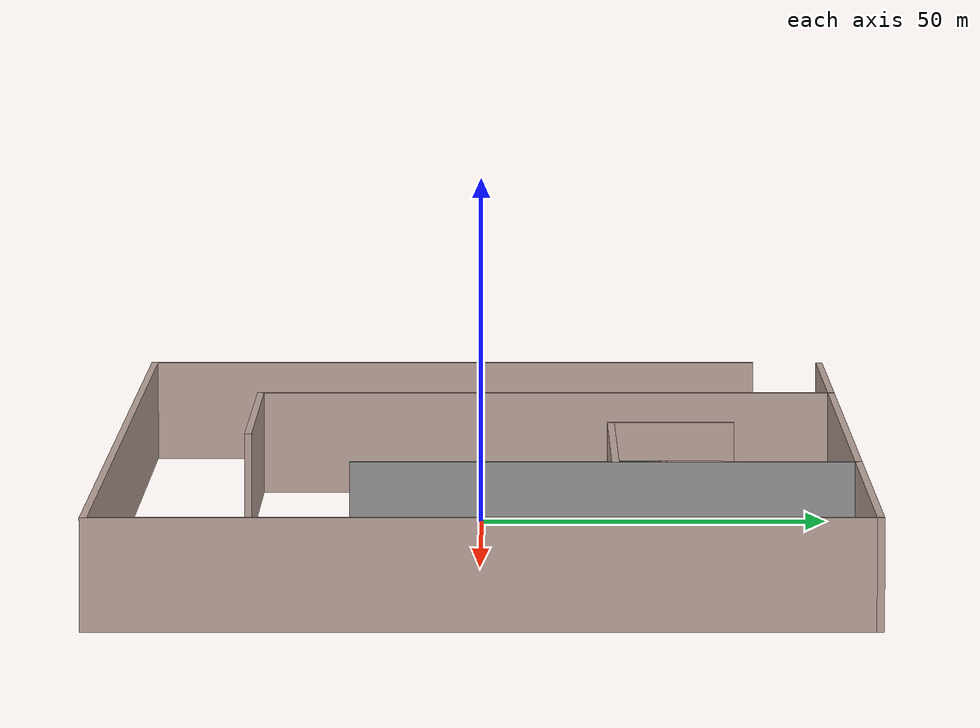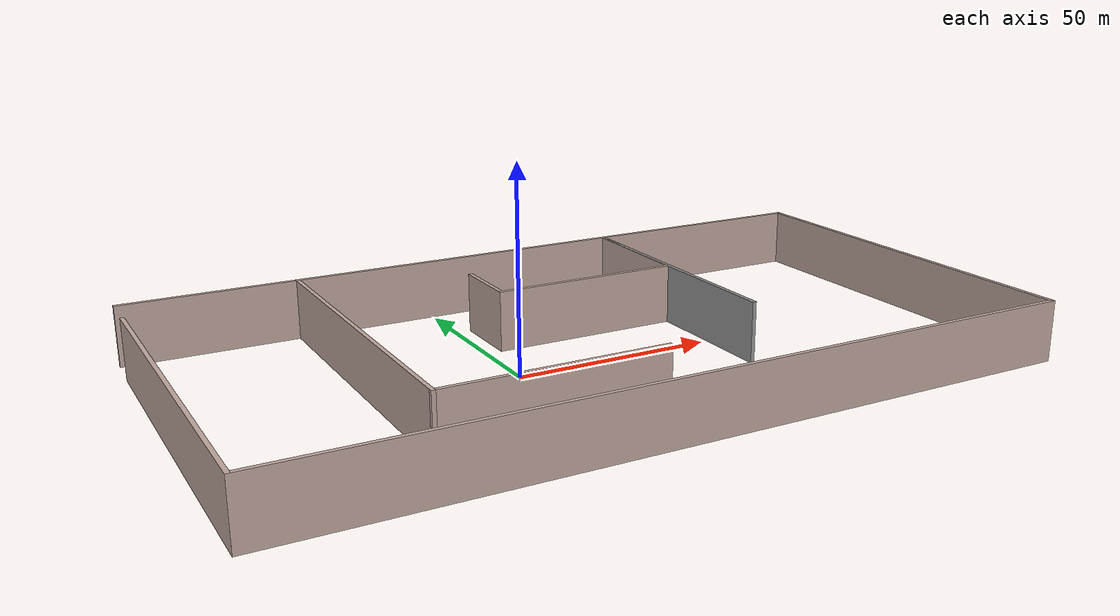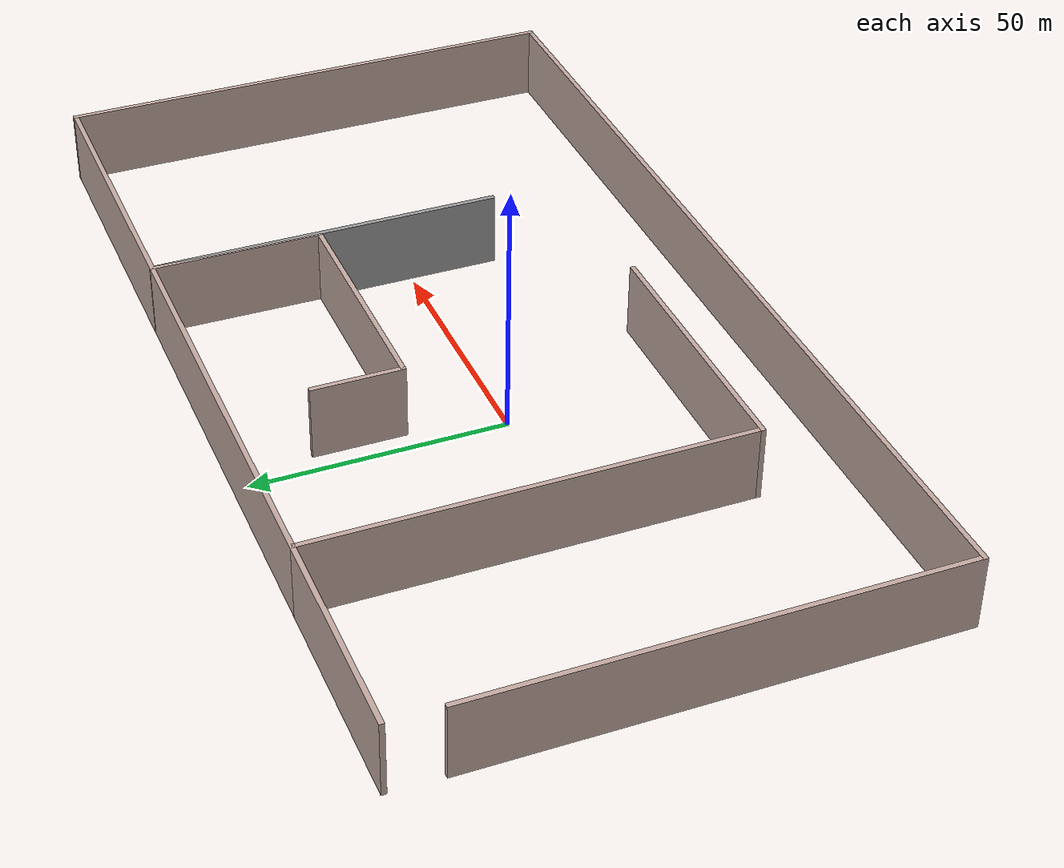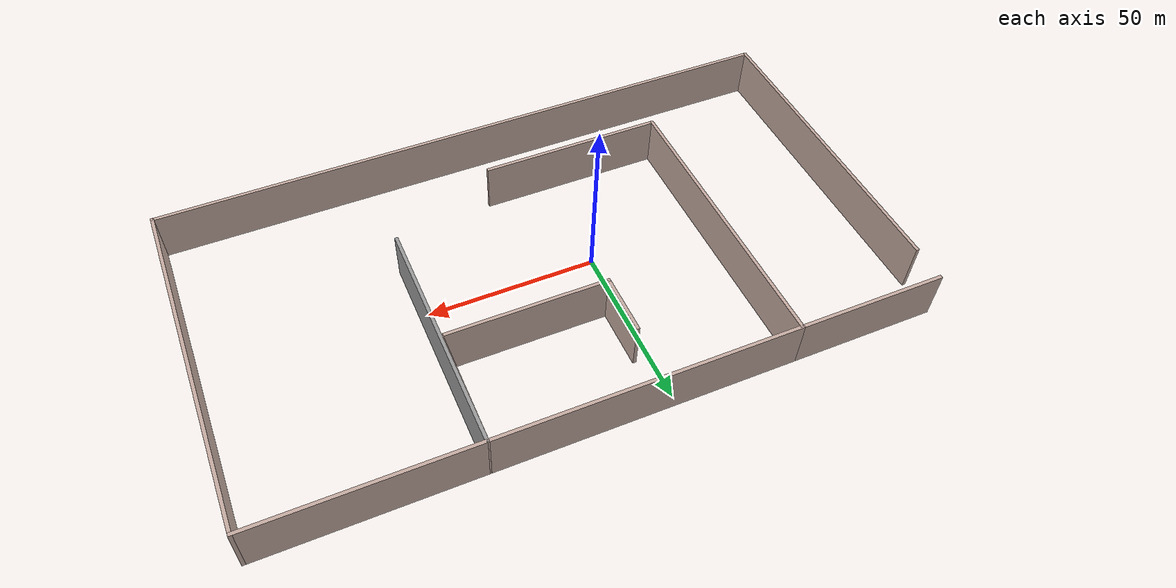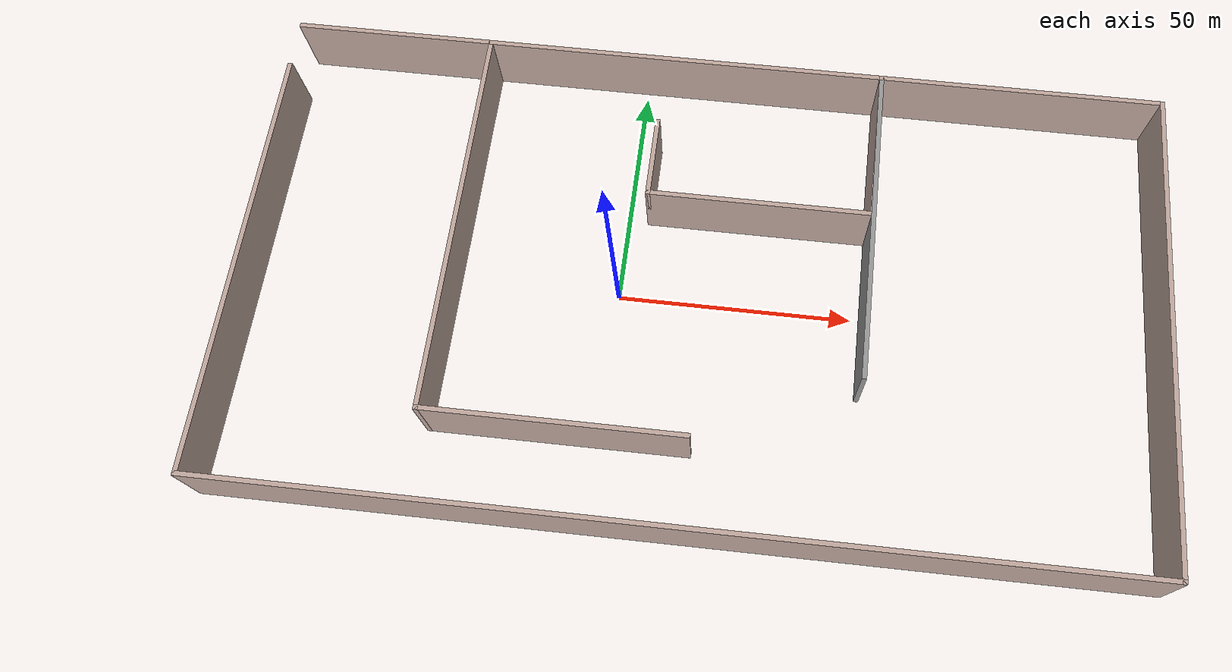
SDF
<?xml version='1.0'?>
<sdf version='1.7'>
  <model name='Home'>
    <pose>17.547 0.516787 0 0 -0 0</pose>
    <link name='Wall_43'>
      <collision name='Wall_43_Collision'>
        <geometry>
          <box>
            <size>93.8498 1 15</size>
          </box>
        </geometry>
        <pose>0 0 7.5 0 -0 0</pose>
      </collision>
      <visual name='Wall_43_Visual'>
        <pose>0 0 7.5 0 -0 0</pose>
        <geometry>
          <box>
            <size>93.8498 1 15</size>
          </box>
        </geometry>
        <material>
          <script>
            <uri>file://media/materials/scripts/gazebo.material</uri>
            <name>Gazebo/Grey</name>
          </script>
          <ambient>0.760784 0.662745 0.627451 1</ambient>
        </material>
        <meta>
          <layer>0</layer>
        </meta>
      </visual>
      <pose>-96.05 -5.37679 0 0 -0 -1.5708</pose>
    </link>
    <link name='Wall_44'>
      <collision name='Wall_44_Collision'>
        <geometry>
          <box>
            <size>193.1 1 15</size>
          </box>
        </geometry>
        <pose>0 0 7.5 0 -0 0</pose>
      </collision>
      <visual name='Wall_44_Visual'>
        <pose>0 0 7.5 0 -0 0</pose>
        <geometry>
          <box>
            <size>193.1 1 15</size>
          </box>
        </geometry>
        <material>
          <script>
            <uri>file://media/materials/scripts/gazebo.material</uri>
            <name>Gazebo/Grey</name>
          </script>
          <ambient>0.760784 0.662745 0.627451 1</ambient>
        </material>
        <meta>
          <layer>0</layer>
        </meta>
      </visual>
      <pose>0 -51.8018 0 0 -0 0</pose>
    </link>
    <link name='Wall_45'>
      <collision name='Wall_45_Collision'>
        <geometry>
          <box>
            <size>104.6 1 15</size>
          </box>
        </geometry>
        <pose>0 0 7.5 0 -0 0</pose>
      </collision>
      <visual name='Wall_45_Visual'>
        <pose>0 0 7.5 0 -0 0</pose>
        <geometry>
          <box>
            <size>104.6 1 15</size>
          </box>
        </geometry>
        <material>
          <script>
            <uri>file://media/materials/scripts/gazebo.material</uri>
            <name>Gazebo/Grey</name>
          </script>
          <ambient>0.760784 0.662745 0.627451 1</ambient>
        </material>
        <meta>
          <layer>0</layer>
        </meta>
      </visual>
      <pose>96.05 -0.001787 0 0 -0 1.5708</pose>
    </link>
    <link name='Wall_46'>
      <collision name='Wall_46_Collision'>
        <geometry>
          <box>
            <size>62.35 1 15</size>
          </box>
        </geometry>
        <pose>0 0 7.5 0 -0 0</pose>
      </collision>
      <visual name='Wall_46_Visual'>
        <pose>0 0 7.5 0 -0 0</pose>
        <geometry>
          <box>
            <size>62.35 1 15</size>
          </box>
        </geometry>
        <material>
          <script>
            <uri>file://media/materials/scripts/gazebo.material</uri>
            <name>Gazebo/Grey</name>
          </script>
          <ambient>0.760784 0.662745 0.627451 1</ambient>
        </material>
        <meta>
          <layer>0</layer>
        </meta>
      </visual>
      <pose>65.375 51.7982 0 0 -0 3.14159</pose>
    </link>
    <link name='Wall_47'>
      <collision name='Wall_47_Collision'>
        <geometry>
          <box>
            <size>70 0.15 2.5</size>
          </box>
        </geometry>
        <pose>0 0 1.25 0 -0 0</pose>
      </collision>
      <visual name='Wall_47_Visual'>
        <pose>0 0 1.25 0 -0 0</pose>
        <geometry>
          <box>
            <size>70 0.15 2.5</size>
          </box>
        </geometry>
        <material>
          <script>
            <uri>file://media/materials/scripts/gazebo.material</uri>
            <name>Gazebo/Grey</name>
          </script>
          <ambient>1 1 1 1</ambient>
        </material>
        <meta>
          <layer>0</layer>
        </meta>
      </visual>
      <pose>34.7 16.8732 0 0 -0 -1.5708</pose>
    </link>
    <link name='Wall_48'>
      <collision name='Wall_48_Collision'>
        <geometry>
          <box>
            <size>70.6002 1 15</size>
          </box>
        </geometry>
        <pose>0 0 7.5 0 -0 0</pose>
      </collision>
      <visual name='Wall_48_Visual'>
        <pose>0 0 7.5 0 -0 0</pose>
        <geometry>
          <box>
            <size>70.6002 1 15</size>
          </box>
        </geometry>
        <material>
          <script>
            <uri>file://media/materials/scripts/gazebo.material</uri>
            <name>Gazebo/Grey</name>
          </script>
          <ambient>1 1 1 1</ambient>
        </material>
        <meta>
          <layer>0</layer>
        </meta>
      </visual>
      <pose>34.7 16.7482 0 0 -0 1.5708</pose>
    </link>
    <link name='Wall_49'>
      <collision name='Wall_49_Collision'>
        <geometry>
          <box>
            <size>33.5 0.15 2.5</size>
          </box>
        </geometry>
        <pose>0 0 1.25 0 -0 0</pose>
      </collision>
      <visual name='Wall_49_Visual'>
        <pose>0 0 1.25 0 -0 0</pose>
        <geometry>
          <box>
            <size>33.5 0.15 2.5</size>
          </box>
        </geometry>
        <material>
          <script>
            <uri>file://media/materials/scripts/gazebo.material</uri>
            <name>Gazebo/Grey</name>
          </script>
          <ambient>1 1 1 1</ambient>
        </material>
        <meta>
          <layer>0</layer>
        </meta>
      </visual>
      <pose>34.6998 34.8733 0 0 -0 -1.57081</pose>
    </link>
    <link name='Wall_50'>
      <collision name='Wall_50_Collision'>
        <geometry>
          <box>
            <size>48 0.15 2.5</size>
          </box>
        </geometry>
        <pose>0 0 1.25 0 -0 0</pose>
      </collision>
      <visual name='Wall_50_Visual'>
        <pose>0 0 1.25 0 -0 0</pose>
        <geometry>
          <box>
            <size>48 0.15 2.5</size>
          </box>
        </geometry>
        <material>
          <script>
            <uri>file://media/materials/scripts/gazebo.material</uri>
            <name>Gazebo/Grey</name>
          </script>
          <ambient>1 1 1 1</ambient>
        </material>
        <meta>
          <layer>0</layer>
        </meta>
      </visual>
      <pose>10.7748 18.1983 0 0 -0 -3.14159</pose>
    </link>
    <link name='Wall_51'>
      <collision name='Wall_51_Collision'>
        <geometry>
          <box>
            <size>17.5 0.15 2.5</size>
          </box>
        </geometry>
        <pose>0 0 1.25 0 -0 0</pose>
      </collision>
      <visual name='Wall_51_Visual'>
        <pose>0 0 1.25 0 -0 0</pose>
        <geometry>
          <box>
            <size>17.5 0.15 2.5</size>
          </box>
        </geometry>
        <material>
          <script>
            <uri>file://media/materials/scripts/gazebo.material</uri>
            <name>Gazebo/Grey</name>
          </script>
          <ambient>1 1 1 1</ambient>
        </material>
        <meta>
          <layer>0</layer>
        </meta>
      </visual>
      <pose>-13.15 26.8732 0 0 -0 1.5708</pose>
    </link>
    <link name='Wall_52'>
      <collision name='Wall_52_Collision'>
        <geometry>
          <box>
            <size>18.35 1 15</size>
          </box>
        </geometry>
        <pose>0 0 7.5 0 -0 0</pose>
      </collision>
      <visual name='Wall_52_Visual'>
        <pose>0 0 7.5 0 -0 0</pose>
        <geometry>
          <box>
            <size>18.35 1 15</size>
          </box>
        </geometry>
        <material>
          <script>
            <uri>file://media/materials/scripts/gazebo.material</uri>
            <name>Gazebo/Grey</name>
          </script>
          <ambient>0.760784 0.662745 0.627451 1</ambient>
        </material>
        <meta>
          <layer>0</layer>
        </meta>
      </visual>
      <pose>-13.15 26.8732 0 0 -0 -1.5708</pose>
    </link>
    <link name='Wall_53'>
      <collision name='Wall_53_Collision'>
        <geometry>
          <box>
            <size>48.6 1 15</size>
          </box>
        </geometry>
        <pose>0 0 7.5 0 -0 0</pose>
      </collision>
      <visual name='Wall_53_Visual'>
        <pose>0 0 7.5 0 -0 0</pose>
        <geometry>
          <box>
            <size>48.6 1 15</size>
          </box>
        </geometry>
        <material>
          <script>
            <uri>file://media/materials/scripts/gazebo.material</uri>
            <name>Gazebo/Grey</name>
          </script>
          <ambient>0.760784 0.662745 0.627451 1</ambient>
        </material>
        <meta>
          <layer>0</layer>
        </meta>
      </visual>
      <pose>10.65 18.1982 0 0 -0 0</pose>
    </link>
    <link name='Wall_54'>
      <collision name='Wall_54_Collision'>
        <geometry>
          <box>
            <size>34.6009 1 15</size>
          </box>
        </geometry>
        <pose>0 0 7.5 0 -0 0</pose>
      </collision>
      <visual name='Wall_54_Visual'>
        <pose>0 0 7.5 0 -0 0</pose>
        <geometry>
          <box>
            <size>34.6009 1 15</size>
          </box>
        </geometry>
        <material>
          <script>
            <uri>file://media/materials/scripts/gazebo.material</uri>
            <name>Gazebo/Grey</name>
          </script>
          <ambient>0.760784 0.662745 0.627451 1</ambient>
        </material>
        <meta>
          <layer>0</layer>
        </meta>
      </visual>
      <pose>34.575 34.9982 0 0 -0 1.56336</pose>
    </link>
    <link name='Wall_55'>
      <collision name='Wall_55_Collision'>
        <geometry>
          <box>
            <size>88.35 1 15</size>
          </box>
        </geometry>
        <pose>0 0 7.5 0 -0 0</pose>
      </collision>
      <visual name='Wall_55_Visual'>
        <pose>0 0 7.5 0 -0 0</pose>
        <geometry>
          <box>
            <size>88.35 1 15</size>
          </box>
        </geometry>
        <material>
          <script>
            <uri>file://media/materials/scripts/gazebo.material</uri>
            <name>Gazebo/Grey</name>
          </script>
          <ambient>0.760784 0.662745 0.627451 1</ambient>
        </material>
        <meta>
          <layer>0</layer>
        </meta>
      </visual>
      <pose>-8.975 51.7982 0 0 -0 3.14159</pose>
    </link>
    <link name='Wall_56'>
      <collision name='Wall_56_Collision'>
        <geometry>
          <box>
            <size>85.75 0.15 2.5</size>
          </box>
        </geometry>
        <pose>0 0 1.25 0 -0 0</pose>
      </collision>
      <visual name='Wall_56_Visual'>
        <pose>0 0 1.25 0 -0 0</pose>
        <geometry>
          <box>
            <size>85.75 0.15 2.5</size>
          </box>
        </geometry>
        <material>
          <script>
            <uri>file://media/materials/scripts/gazebo.material</uri>
            <name>Gazebo/Grey</name>
          </script>
          <ambient>1 1 1 1</ambient>
        </material>
        <meta>
          <layer>0</layer>
        </meta>
      </visual>
      <pose>-52.65 8.99821 0 0 -0 -1.5708</pose>
    </link>
    <link name='Wall_57'>
      <collision name='Wall_57_Collision'>
        <geometry>
          <box>
            <size>54 0.15 2.5</size>
          </box>
        </geometry>
        <pose>0 0 1.25 0 -0 0</pose>
      </collision>
      <visual name='Wall_57_Visual'>
        <pose>0 0 1.25 0 -0 0</pose>
        <geometry>
          <box>
            <size>54 0.15 2.5</size>
          </box>
        </geometry>
        <material>
          <script>
            <uri>file://media/materials/scripts/gazebo.material</uri>
            <name>Gazebo/Grey</name>
          </script>
          <ambient>1 1 1 1</ambient>
        </material>
        <meta>
          <layer>0</layer>
        </meta>
      </visual>
      <pose>-25.725 -33.8018 0 0 -0 0</pose>
    </link>
    <link name='Wall_58'>
      <collision name='Wall_58_Collision'>
        <geometry>
          <box>
            <size>54.85 1 15</size>
          </box>
        </geometry>
        <pose>0 0 7.5 0 -0 0</pose>
      </collision>
      <visual name='Wall_58_Visual'>
        <pose>0 0 7.5 0 -0 0</pose>
        <geometry>
          <box>
            <size>54.85 1 15</size>
          </box>
        </geometry>
        <material>
          <script>
            <uri>file://media/materials/scripts/gazebo.material</uri>
            <name>Gazebo/Grey</name>
          </script>
          <ambient>0.760784 0.662745 0.627451 1</ambient>
        </material>
        <meta>
          <layer>0</layer>
        </meta>
      </visual>
      <pose>-25.725 -33.8018 0 0 -0 3.14159</pose>
    </link>
    <link name='Wall_59'>
      <collision name='Wall_59_Collision'>
        <geometry>
          <box>
            <size>86.6 1 15</size>
          </box>
        </geometry>
        <pose>0 0 7.5 0 -0 0</pose>
      </collision>
      <visual name='Wall_59_Visual'>
        <pose>0 0 7.5 0 -0 0</pose>
        <geometry>
          <box>
            <size>86.6 1 15</size>
          </box>
        </geometry>
        <material>
          <script>
            <uri>file://media/materials/scripts/gazebo.material</uri>
            <name>Gazebo/Grey</name>
          </script>
          <ambient>0.760784 0.662745 0.627451 1</ambient>
        </material>
        <meta>
          <layer>0</layer>
        </meta>
      </visual>
      <pose>-52.65 8.99821 0 0 -0 1.5708</pose>
    </link>
    <link name='Wall_60'>
      <collision name='Wall_60_Collision'>
        <geometry>
          <box>
            <size>44.1003 1 15</size>
          </box>
        </geometry>
        <pose>0 0 7.5 0 -0 0</pose>
      </collision>
      <visual name='Wall_60_Visual'>
        <pose>0 0 7.5 0 -0 0</pose>
        <geometry>
          <box>
            <size>44.1003 1 15</size>
          </box>
        </geometry>
        <material>
          <script>
            <uri>file://media/materials/scripts/gazebo.material</uri>
            <name>Gazebo/Grey</name>
          </script>
          <ambient>0.760784 0.662745 0.627451 1</ambient>
        </material>
        <meta>
          <layer>0</layer>
        </meta>
      </visual>
      <pose>-74.2 51.7982 0 0 -0 3.14159</pose>
    </link>
    <static>1</static>
  </model>
</sdf>
